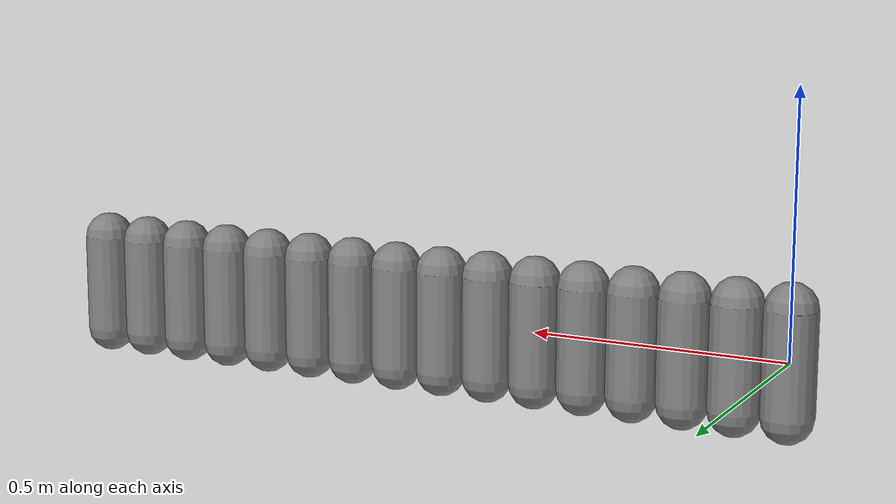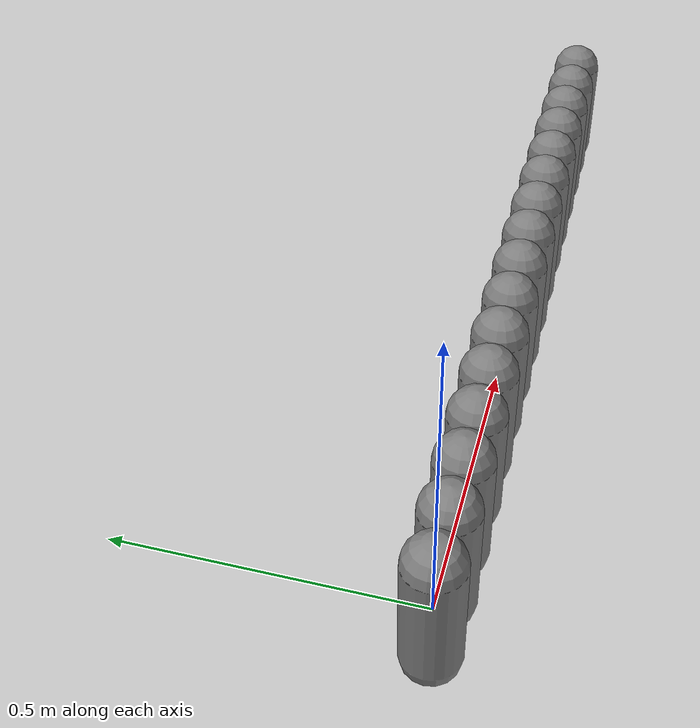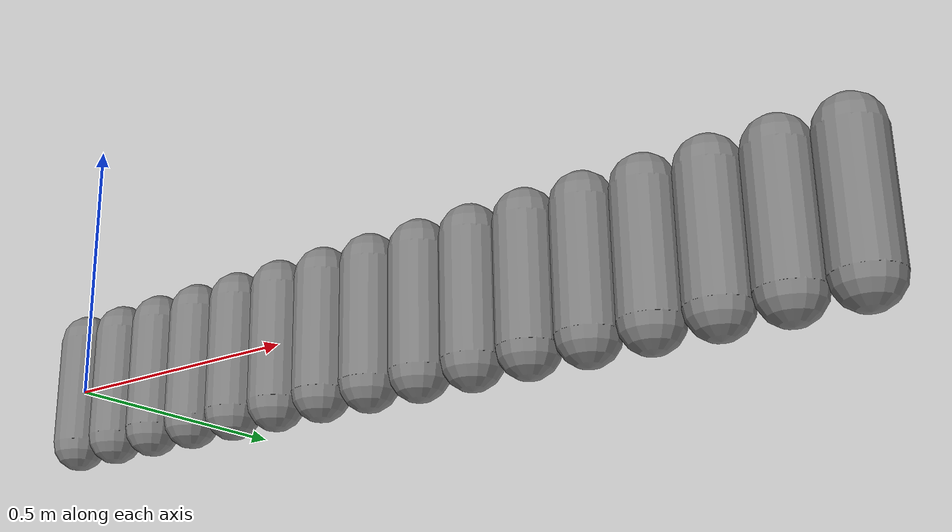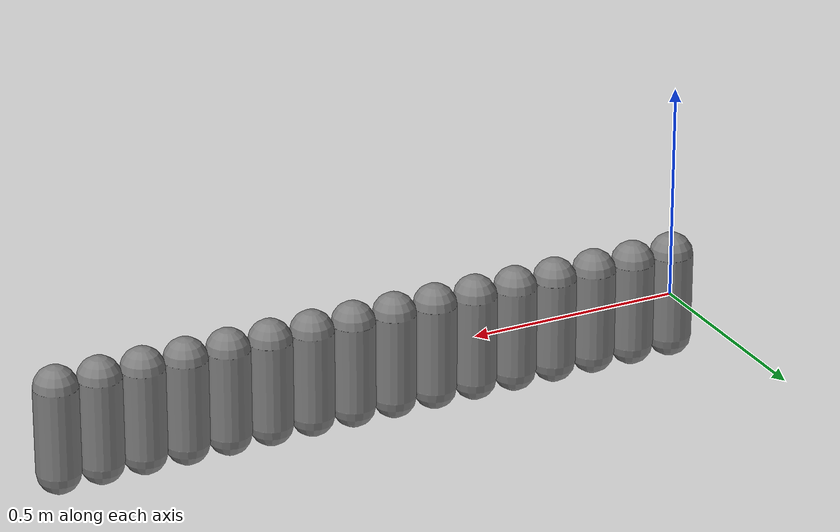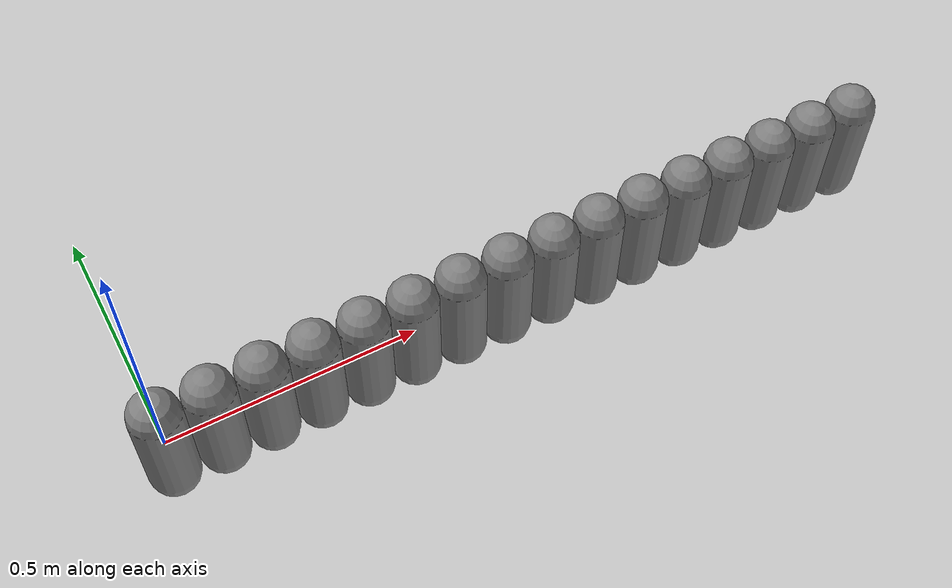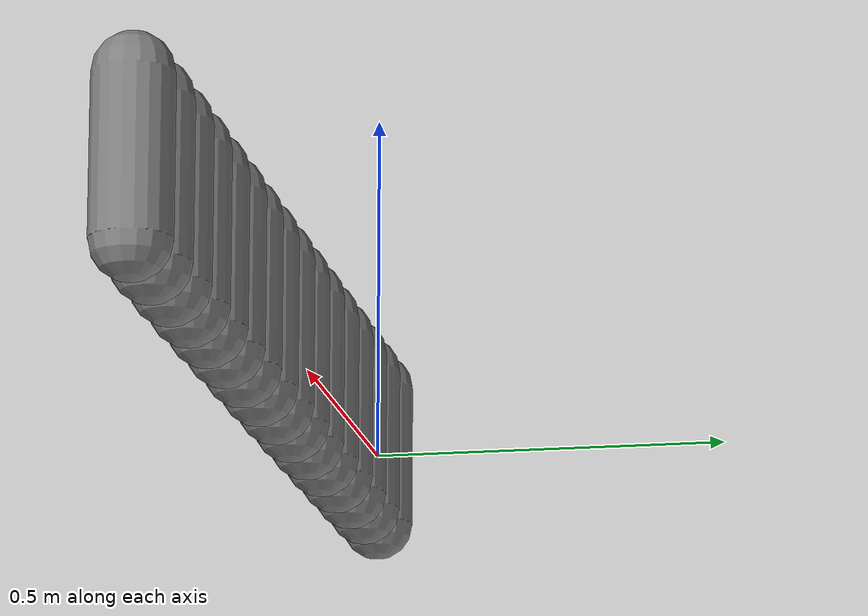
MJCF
<mujoco model="n_swimmer">
  <compiler angle="radian"/>
  <default>
    <joint armature="0.1" damping="1.0"/>
    <geom type="capsule" size="0.05 0.1" density="1000"/>
  </default>

  <worldbody>
    <body name="torso" pos="0 0 0">
      <geom size="0.05 0.1"/>

        <body name="link0" pos="0.1 0 0">
          <joint name="joint0" type="hinge" axis="0 0 1" range="-100 100"/>
          <geom/>

        <body name="link1" pos="0.1 0 0">
          <joint name="joint1" type="hinge" axis="0 0 1" range="-100 100"/>
          <geom/>

        <body name="link2" pos="0.1 0 0">
          <joint name="joint2" type="hinge" axis="0 0 1" range="-100 100"/>
          <geom/>

        <body name="link3" pos="0.1 0 0">
          <joint name="joint3" type="hinge" axis="0 0 1" range="-100 100"/>
          <geom/>

        <body name="link4" pos="0.1 0 0">
          <joint name="joint4" type="hinge" axis="0 0 1" range="-100 100"/>
          <geom/>

        <body name="link5" pos="0.1 0 0">
          <joint name="joint5" type="hinge" axis="0 0 1" range="-100 100"/>
          <geom/>

        <body name="link6" pos="0.1 0 0">
          <joint name="joint6" type="hinge" axis="0 0 1" range="-100 100"/>
          <geom/>

        <body name="link7" pos="0.1 0 0">
          <joint name="joint7" type="hinge" axis="0 0 1" range="-100 100"/>
          <geom/>

        <body name="link8" pos="0.1 0 0">
          <joint name="joint8" type="hinge" axis="0 0 1" range="-100 100"/>
          <geom/>

        <body name="link9" pos="0.1 0 0">
          <joint name="joint9" type="hinge" axis="0 0 1" range="-100 100"/>
          <geom/>

        <body name="link10" pos="0.1 0 0">
          <joint name="joint10" type="hinge" axis="0 0 1" range="-100 100"/>
          <geom/>

        <body name="link11" pos="0.1 0 0">
          <joint name="joint11" type="hinge" axis="0 0 1" range="-100 100"/>
          <geom/>

        <body name="link12" pos="0.1 0 0">
          <joint name="joint12" type="hinge" axis="0 0 1" range="-100 100"/>
          <geom/>

        <body name="link13" pos="0.1 0 0">
          <joint name="joint13" type="hinge" axis="0 0 1" range="-100 100"/>
          <geom/>

        <body name="link14" pos="0.1 0 0">
          <joint name="joint14" type="hinge" axis="0 0 1" range="-100 100"/>
          <geom/>
        </body></body></body></body></body></body></body></body></body></body></body></body></body></body></body>
    </body>
  </worldbody>

  <actuator>
    <motor joint="joint0" ctrlrange="-1 1"/>
<motor joint="joint1" ctrlrange="-1 1"/>
<motor joint="joint2" ctrlrange="-1 1"/>
<motor joint="joint3" ctrlrange="-1 1"/>
<motor joint="joint4" ctrlrange="-1 1"/>
<motor joint="joint5" ctrlrange="-1 1"/>
<motor joint="joint6" ctrlrange="-1 1"/>
<motor joint="joint7" ctrlrange="-1 1"/>
<motor joint="joint8" ctrlrange="-1 1"/>
<motor joint="joint9" ctrlrange="-1 1"/>
<motor joint="joint10" ctrlrange="-1 1"/>
<motor joint="joint11" ctrlrange="-1 1"/>
<motor joint="joint12" ctrlrange="-1 1"/>
<motor joint="joint13" ctrlrange="-1 1"/>
<motor joint="joint14" ctrlrange="-1 1"/>
  </actuator>
</mujoco>
